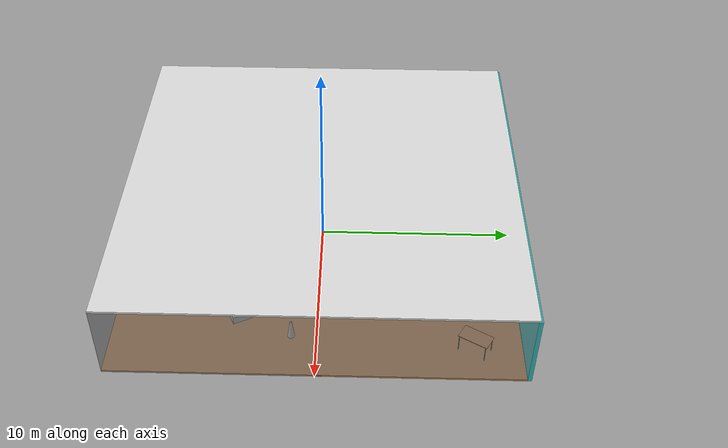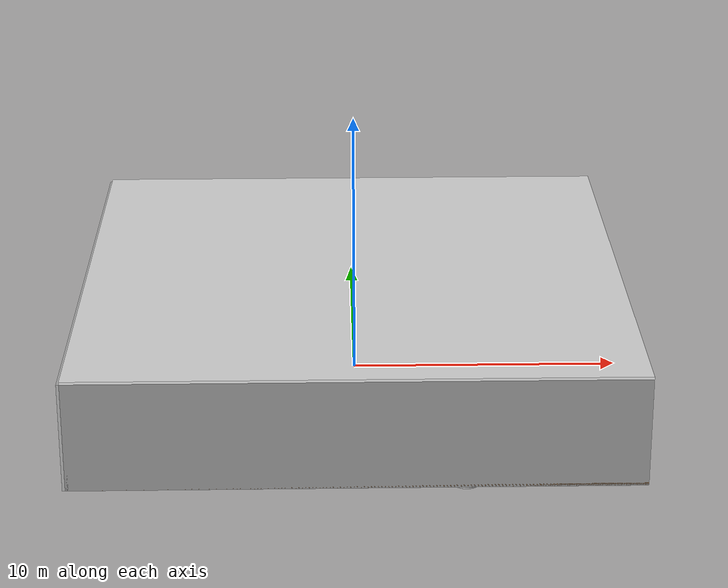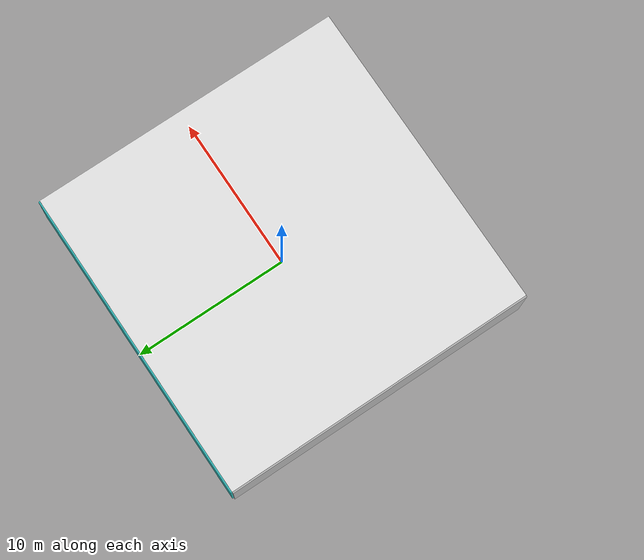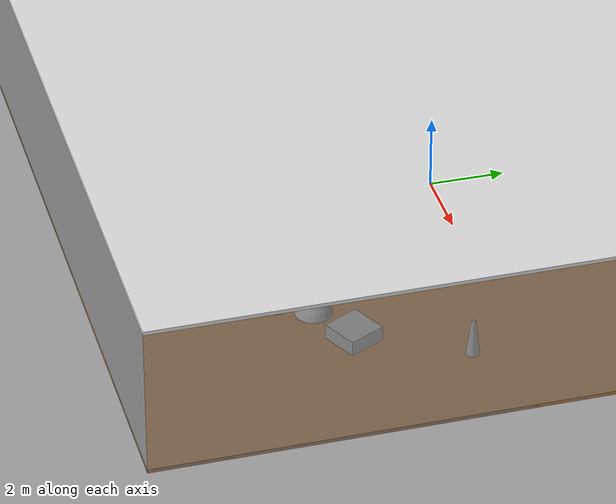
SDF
<sdf version="1.4">
 <world name="default">
  <physics type="ode">
   <max_step_size>0.001</max_step_size>
   <real_time_factor>1</real_time_factor>
   <real_time_update_rate>1000</real_time_update_rate>
   <gravity>0 0 -9.8</gravity>
  </physics>
  <scene><ambient>0.4 0.4 0.4 1</ambient><background>0.7 0.7 0.7 1</background><shadows>1</shadows></scene>
  <model name="Surrounding">
   <static>1</static>
   <link name="Ceiling">
    <collision name="Ceiling_Collision"><geometry><box><size>20 20 0.1</size></box></geometry></collision>
    <visual name="Ceiling_Visual">
     <geometry><box><size>20 20 0.1</size></box></geometry>
     <material>
      <script><uri>file://media/materials/scripts/gazebo.material</uri><name>Gazebo/WhiteGlow</name></script>
     </material>
    </visual>
    <pose>0 0 4.05 0 0 0</pose>
   </link>
   <link name="Wall_South">
    <collision name="Wall_South_Collision">
     <geometry><box><size>20 0 4</size></box></geometry>
     <pose>0 0 2 0 -0 0</pose>
    </collision>
    <visual name="Wall_South_Visual">
     <pose>0 0 2 0 -0 0</pose>
     <geometry><box><size>20 0 4</size></box></geometry>
     <material>
      <script><uri>file://media/materials/scripts/gazebo.material</uri><name>Gazebo/GreyGradientSky</name></script>
     </material>
    </visual>
    <velocity_decay><linear>0</linear><angular>0</angular></velocity_decay>
    <pose>0 -10 0 0 -0 0</pose>
   </link>
   <link name="Wall_East">
    <collision name="Wall_21_Collision">
     <geometry><box><size>20 0 4</size></box></geometry>
     <pose>0 0 2 0 -0 0</pose>
    </collision>
    <visual name="Wall_21_Visual">
     <pose>0 0 2 0 -0 0</pose>
     <geometry><box><size>20 0 4</size></box></geometry>
     <material>
      <script><uri>file://media/materials/scripts/gazebo.material</uri><name>Gazebo/GreyTransparent</name></script>
     </material>
    </visual>
    <velocity_decay><linear>0</linear><angular>0</angular></velocity_decay>
    <pose>10 0 0 0 -0 1.5708</pose>
   </link>
   <link name="Wall_North">
    <collision name="Wall_22_Collision">
     <geometry><box><size>20 0.2 4</size></box></geometry>
     <pose>0 0 2 0 -0 0</pose>
    </collision>
    <visual name="Wall_22_Visual">
     <pose>0 0 2 0 -0 0</pose>
     <geometry><box><size>20 0.2 4</size></box></geometry>
     <material>
      <script><uri>file://media/materials/scripts/gazebo.material</uri><name>Gazebo/TurquoiseGlow</name></script>
     </material>
    </visual>
    <velocity_decay><linear>0</linear><angular>0</angular></velocity_decay>
    <pose>0 10 0 0 -0 0</pose>
   </link>
   <link name="Wall_West">
    <collision name="Wall_23_Collision">
     <geometry><box><size>20 0.2 4</size></box></geometry>
     <pose>0 0 2 0 -0 0</pose>
    </collision>
    <visual name="Wall_23_Visual">
     <pose>0 0 2 0 -0 0</pose>
     <geometry><box><size>20 0.2 4</size></box></geometry>
     <material>
      <script><uri>file://media/materials/scripts/gazebo.material</uri><name>Gazebo/Pioneer2Body</name></script>
     </material>
    </visual>
    <velocity_decay><linear>0</linear><angular>0</angular></velocity_decay>
    <pose>-10 0 0 0 0 -1.5708</pose>
   </link>
   <link name="Ground_link">
    <collision name="collision">
     <pose>0 0 .05 0 -0 0</pose>
     <geometry><box><size>20 20 0.1</size></box></geometry>
    </collision>
    <visual name="visual">
     <pose>0 0 .05 0 -0 0</pose>
     <geometry><box><size>20 20 0.1</size></box></geometry>
     <material>
      <script><uri>file://media/materials/scripts/gazebo.material</uri><name>Gazebo/WoodFloor</name></script>
     </material>
    </visual>
   </link>
   <static>1</static>
  </model>
  <spherical_coordinates>
   <surface_model>EARTH_WGS84</surface_model>
   <latitude_deg>0</latitude_deg>
   <longitude_deg>0</longitude_deg>
   <elevation>0</elevation>
   <heading_deg>0</heading_deg>
  </spherical_coordinates>
  <light name="lightball_0" type="diffuse">
   <diffuse>0.8 0.8 0.8 1</diffuse>
   <specular>0.2 0.2 0.2 1</specular>
   <attenuation>
    <range>100</range>
    <constant>0.7</constant>
    <linear>0.01</linear>
    <quadratic>0.001</quadratic>
   </attenuation>
   <direction>-0.5 0.1 -0.9</direction>
   <pose>-2.17482723141 -8.96979359096 1.91623494386 0 0 0</pose>
  </light>
  <light name="lightball_1" type="diffuse">
   <diffuse>0.8 0.8 0.8 1</diffuse>
   <specular>0.2 0.2 0.2 1</specular>
   <attenuation>
    <range>100</range>
    <constant>0.7</constant>
    <linear>0.01</linear>
    <quadratic>0.001</quadratic>
   </attenuation>
   <direction>-0.5 0.1 -0.9</direction>
   <pose>0.96469014225 9.47883478415 3.04969303629 0 0 0</pose>
  </light>
  <light name="lightball_2" type="diffuse">
   <diffuse>0.8 0.8 0.8 1</diffuse>
   <specular>0.2 0.2 0.2 1</specular>
   <attenuation>
    <range>100</range>
    <constant>0.7</constant>
    <linear>0.01</linear>
    <quadratic>0.001</quadratic>
   </attenuation>
   <direction>-0.5 0.1 -0.9</direction>
   <pose>-7.75322824455 9.76666003586 1.82250931684 0 0 0</pose>
  </light>
  <light name="lightball_3" type="diffuse">
   <diffuse>0.8 0.8 0.8 1</diffuse>
   <specular>0.2 0.2 0.2 1</specular>
   <attenuation>
    <range>100</range>
    <constant>0.7</constant>
    <linear>0.01</linear>
    <quadratic>0.001</quadratic>
   </attenuation>
   <direction>-0.5 0.1 -0.9</direction>
   <pose>4.48947811363 3.6505712582 1.77880971225 0 0 0</pose>
  </light>
  <light name="lightball_4" type="diffuse">
   <diffuse>0.8 0.8 0.8 1</diffuse>
   <specular>0.2 0.2 0.2 1</specular>
   <attenuation>
    <range>100</range>
    <constant>0.7</constant>
    <linear>0.01</linear>
    <quadratic>0.001</quadratic>
   </attenuation>
   <direction>-0.5 0.1 -0.9</direction>
   <pose>-3.72030787942 -3.08841539803 3.50748528748 0 0 0</pose>
  </light>
  <light name="lightball_5" type="diffuse">
   <diffuse>0.8 0.8 0.8 1</diffuse>
   <specular>0.2 0.2 0.2 1</specular>
   <attenuation>
    <range>100</range>
    <constant>0.7</constant>
    <linear>0.01</linear>
    <quadratic>0.001</quadratic>
   </attenuation>
   <direction>-0.5 0.1 -0.9</direction>
   <pose>5.61138955627 9.23691932564 1.19244002757 0 0 0</pose>
  </light>
  <light name="lightball_6" type="diffuse">
   <diffuse>0.8 0.8 0.8 1</diffuse>
   <specular>0.2 0.2 0.2 1</specular>
   <attenuation>
    <range>100</range>
    <constant>0.7</constant>
    <linear>0.01</linear>
    <quadratic>0.001</quadratic>
   </attenuation>
   <direction>-0.5 0.1 -0.9</direction>
   <pose>-2.61605801424 8.86877947623 2.54233136905 0 0 0</pose>
  </light>
  <include><uri>model://cabinet</uri><pose>-4.77989257717 4.19096294594 0 0 0 1.60475542136</pose></include>
  <include><uri>model://cabinet</uri><pose>-0.899393137581 -8.01088422771 0 0 0 1.70166770238</pose></include>
  <include><uri>model://table</uri><pose>0.768814413299 -7.20302589653 0 0 0 2.55137653566</pose></include>
  <include>
   <uri>model://textured_shapes</uri>
   <pose>4.01707145976 -7.21924778746 0 0 0 3.00070379542</pose>
  </include>
  <include>
   <uri>model://textured_shapes</uri>
   <pose>4.91484355373 -4.5496660054 0 0 0 2.03162146796</pose>
  </include>
  <include><uri>model://cabinet</uri><pose>4.24215472448 6.75900986478 0 0 0 0.602592008545</pose></include>
  <include>
   <uri>model://construction_cone</uri>
   <pose>7.61052086233 -1.2344408727 0 0 0 1.33489348659</pose>
  </include>
  <include><uri>model://table</uri><pose>8.23303806148 7.57323547789 0 0 0 1.03515314396</pose></include>
 </world>
</sdf>

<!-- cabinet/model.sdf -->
<sdf version="1.5">
  <model name="cabinet">
    <static>true</static>
    <link name="cabinet_bottom_plate">
      <inertial>
        <pose>0 0 -1 0 0 0</pose>
        <inertia>
          <ixx>2.050000</ixx>
          <ixy>0</ixy>
          <ixz>0</ixz>
          <iyy>2.050000</iyy>
          <iyz>0</iyz>
          <izz>2.050000</izz>
        </inertia>
        <mass>25.000000</mass>
      </inertial>
      <collision name="cabinet_bottom_plate_geom">
        <pose>0 0 0.010000 0 0 0</pose>
        <geometry>
          <box>
            <size>0.450000 0.450000 0.020000</size>
          </box>
        </geometry>
      </collision>
      <visual name="cabinet_bottom_plate_geom_visual">
        <pose>0 0 0.010000 0 0 0</pose>
        <geometry>
          <box>
            <size>0.450000 0.450000 0.020000</size>
          </box>
        </geometry>
        <material>
          <script>
            <uri>model://media/materials/scripts/gazebo.material</uri>
            <name>Gazebo/Wood</name>
          </script>
        </material>
      </visual>
      <collision name="cabinet_bottom_plate_geom_cabinet_back_plate">
        <pose>0.235000 0 0.510000 0 0 0</pose>
        <geometry>
          <box>
            <size>0.020000 0.450000 1.020000</size>
          </box>
        </geometry>
      </collision>
      <visual name="cabinet_bottom_plate_geom_cabinet_back_plate_visual">
        <pose>0.235000 0 0.510000 0 0 0</pose>
        <geometry>
          <box>
            <size>0.020000 0.450000 1.020000</size>
          </box>
        </geometry>
        <material>
          <script>
            <uri>model://media/materials/scripts/gazebo.material</uri>
            <name>Gazebo/Wood</name>
          </script>
        </material>
      </visual>
      <collision name="cabinet_bottom_plate_geom_cabinet_left_plate">
        <pose>0 0.235000 0.510000 0 0 0</pose>
        <geometry>
          <box>
            <size>0.450000 0.020000 1.020000</size>
          </box>
        </geometry>
      </collision>
      <visual name="cabinet_bottom_plate_geom_cabinet_left_plate_visual">
        <pose>0 0.235000 0.510000 0 0 0</pose>
        <geometry>
          <box>
            <size>0.450000 0.020000 1.020000</size>
          </box>
        </geometry>
        <material>
          <script>
            <uri>model://media/materials/scripts/gazebo.material</uri>
            <name>Gazebo/Wood</name>
          </script>
        </material>
      </visual>
      <collision name="cabinet_bottom_plate_geom_cabinet_middle_plate">
        <pose>0 0 0.510000 0 0 0</pose>
        <geometry>
          <box>
            <size>0.450000 0.450000 0.020000</size>
          </box>
        </geometry>
      </collision>
      <visual name="cabinet_bottom_plate_geom_cabinet_middle_plate_visual">
        <pose>0 0 0.510000 0 0 0</pose>
        <geometry>
          <box>
            <size>0.450000 0.450000 0.020000</size>
          </box>
        </geometry>
        <material>
          <script>
            <uri>model://media/materials/scripts/gazebo.material</uri>
            <name>Gazebo/Wood</name>
          </script>
        </material>
      </visual>
      <collision name="cabinet_bottom_plate_geom_cabinet_right_plate">
        <pose>0 -0.235000 0.510000 0 0 0</pose>
        <geometry>
          <box>
            <size>0.450000 0.020000 1.020000</size>
          </box>
        </geometry>
      </collision>
      <visual name="cabinet_bottom_plate_geom_cabinet_right_plate_visual">
        <pose>0 -0.235000 0.510000 0 0 0</pose>
        <geometry>
          <box>
            <size>0.450000 0.020000 1.020000</size>
          </box>
        </geometry>
        <material>
          <script>
            <uri>model://media/materials/scripts/gazebo.material</uri>
            <name>Gazebo/Wood</name>
          </script>
        </material>
      </visual>
      <collision name="cabinet_bottom_plate_geom_cabinet_top_plate">
        <pose>0 0 1.010000 0 0 0</pose>
        <geometry>
          <box>
            <size>0.450000 0.450000 0.020000</size>
          </box>
        </geometry>
      </collision>
      <visual name="cabinet_bottom_plate_geom_cabinet_top_plate_visual">
        <pose>0 0 1.010000 0 0 0</pose>
        <geometry>
          <box>
            <size>0.450000 0.450000 0.020000</size>
          </box>
        </geometry>
        <material>
          <script>
            <uri>model://media/materials/scripts/gazebo.material</uri>
            <name>Gazebo/Wood</name>
          </script>
        </material>
      </visual>
    </link>
  </model>
</sdf>

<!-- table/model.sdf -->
<sdf version="1.5">
  <model name="table">
    <static>true</static>
    <link name="link">
      <collision name="surface">
        <pose>0 0 1.0 0 0 0</pose>
        <geometry>
          <box>
            <size>1.5 0.8 0.03</size>
          </box>
        </geometry>
        <surface>
          <friction>
            <ode>
              <mu>0.6</mu>
              <mu2>0.6</mu2>
            </ode>
          </friction>
        </surface>
      </collision>
      <visual name="visual1">
        <pose>0 0 1.0 0 0 0</pose>
        <geometry>
          <box>
            <size>1.5 0.8 0.03</size>
          </box>
        </geometry>
        <material>
          <script>
            <uri>model://media/materials/scripts/gazebo.material</uri>
            <name>Gazebo/Wood</name>
          </script>
        </material>
      </visual>
      <collision name="front_left_leg">
        <pose>0.68 0.38 0.5 0 0 0</pose>
        <geometry>
          <cylinder>
            <radius>0.02</radius>
            <length>1.0</length>
          </cylinder>
        </geometry>
      </collision>
      <visual name="front_left_leg">
        <pose>0.68 0.38 0.5 0 0 0</pose>
        <geometry>
          <cylinder>
            <radius>0.02</radius>
            <length>1.0</length>
          </cylinder>
        </geometry>
        <material>
          <script>
            <uri>model://media/materials/scripts/gazebo.material</uri>
            <name>Gazebo/Grey</name>
          </script>
        </material>
      </visual>
      <collision name="front_right_leg">
        <pose>0.68 -0.38 0.5 0 0 0</pose>
        <geometry>
          <cylinder>
            <radius>0.02</radius>
            <length>1.0</length>
          </cylinder>
        </geometry>
      </collision>
      <visual name="front_right_leg">
        <pose>0.68 -0.38 0.5 0 0 0</pose>
        <geometry>
          <cylinder>
            <radius>0.02</radius>
            <length>1.0</length>
          </cylinder>
        </geometry>
        <material>
          <script>
            <uri>model://media/materials/scripts/gazebo.material</uri>
            <name>Gazebo/Grey</name>
          </script>
        </material>
      </visual>
      <collision name="back_right_leg">
        <pose>-0.68 -0.38 0.5 0 0 0</pose>
        <geometry>
          <cylinder>
            <radius>0.02</radius>
            <length>1.0</length>
          </cylinder>
        </geometry>
      </collision>
      <visual name="back_right_leg">
        <pose>-0.68 -0.38 0.5 0 0 0</pose>
        <geometry>
          <cylinder>
            <radius>0.02</radius>
            <length>1.0</length>
          </cylinder>
        </geometry>
        <material>
          <script>
            <uri>model://media/materials/scripts/gazebo.material</uri>
            <name>Gazebo/Grey</name>
          </script>
        </material>
      </visual>
      <collision name="back_left_leg">
        <pose>-0.68 0.38 0.5 0 0 0</pose>
        <geometry>
          <cylinder>
            <radius>0.02</radius>
            <length>1.0</length>
          </cylinder>
        </geometry>
      </collision>
      <visual name="back_left_leg">
        <pose>-0.68 0.38 0.5 0 0 0</pose>
        <geometry>
          <cylinder>
            <radius>0.02</radius>
            <length>1.0</length>
          </cylinder>
        </geometry>
        <material>
          <script>
            <uri>model://media/materials/scripts/gazebo.material</uri>
            <name>Gazebo/Grey</name>
          </script>
        </material>
      </visual>
    </link>
  </model>
</sdf>

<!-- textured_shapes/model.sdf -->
<sdf version="1.6">
  <model name="textured_shapes">
    <pose>0 0 0.5 0 0 0</pose>
    <link name="box">
      <pose>0 -1.5 0 0 0 0</pose>
      <collision name="collision">
        <geometry>
          <box>
            <size>1 1 1</size>
          </box>
        </geometry>
      </collision>
      <visual name="visual">
        <geometry>
          <box>
            <size>1 1 1</size>
          </box>
        </geometry>
        <material>
          <script>
            <uri>model://../model_source/models/textured_shapes/materials/scripts</uri>
            <uri>model://../model_source/models/textured_shapes/materials/textures</uri>
            <name>TexturedShape/Squares</name>
          </script>
        </material>
      </visual>
    </link>
    <link name="sphere">
      <collision name="collision">
        <geometry>
          <sphere>
            <radius>0.5</radius>
          </sphere>
        </geometry>
      </collision>
      <visual name="visual">
        <geometry>
          <sphere>
            <radius>0.5</radius>
          </sphere>
        </geometry>
        <material>
          <script>
            <uri>model://../model_source/models/textured_shapes/materials/scripts</uri>
            <uri>model://../model_source/models/textured_shapes/materials/textures</uri>
            <name>TexturedShape/Squares</name>
          </script>
        </material>
      </visual>
    </link>
    <link name="cylinder">
      <pose>0 1.5 0 0 0 0</pose>
      <collision name="collision">
        <geometry>
          <cylinder>
            <radius>0.5</radius>
            <length>1</length>
          </cylinder>
        </geometry>
      </collision>
      <visual name="visual">
        <geometry>
          <cylinder>
            <radius>0.5</radius>
            <length>1</length>
          </cylinder>
        </geometry>
        <material>
          <script>
            <uri>model://../model_source/models/textured_shapes/materials/scripts</uri>
            <uri>model://../model_source/models/textured_shapes/materials/textures</uri>
            <name>TexturedShape/Squares</name>
          </script>
        </material>
      </visual>
    </link>
  </model>
</sdf>

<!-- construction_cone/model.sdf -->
<sdf version="1.5">
  <model name="Construction Cone">
    <link name="link">
      <collision name="collision">
        <geometry>
          <mesh>
            <scale>10 10 10</scale>
            <uri>file://isr-testbed/construction_cone/meshes/construction_cone.dae</uri>
          </mesh>
        </geometry>
      </collision>
      <visual name="visual">
        <geometry>
          <mesh>
            <scale>10 10 10</scale>
            <uri>file://isr-testbed/construction_cone/meshes/construction_cone.dae</uri>
          </mesh>
        </geometry>
      </visual>
    </link>
  </model>
</sdf>
